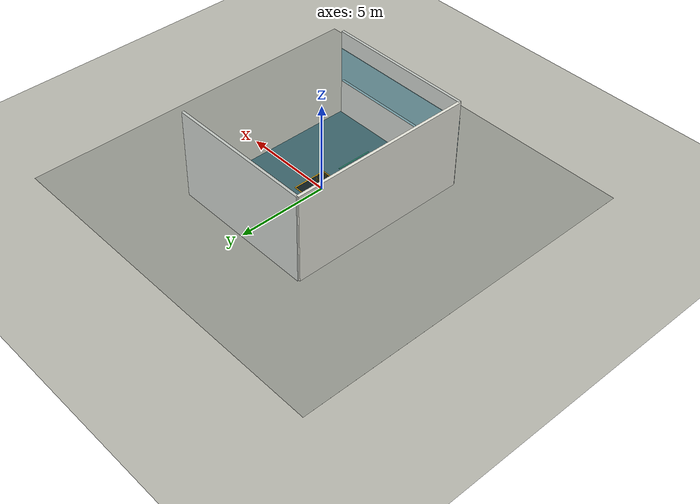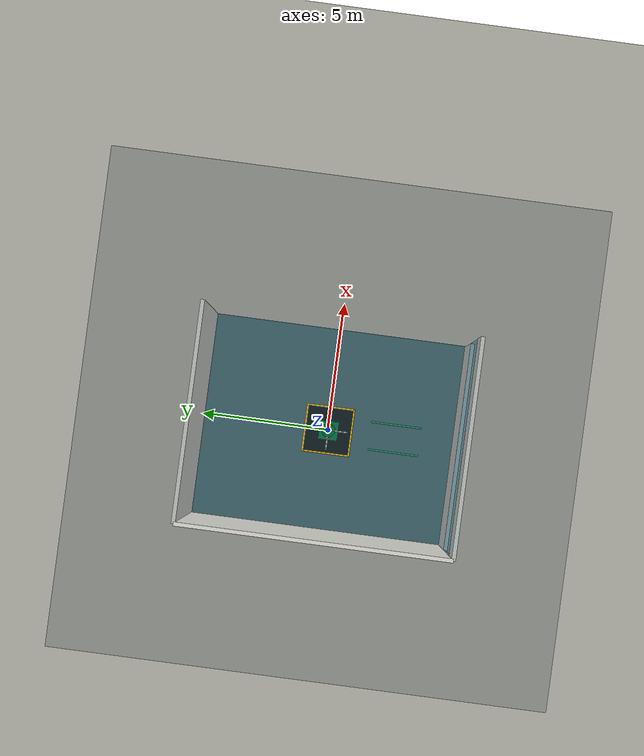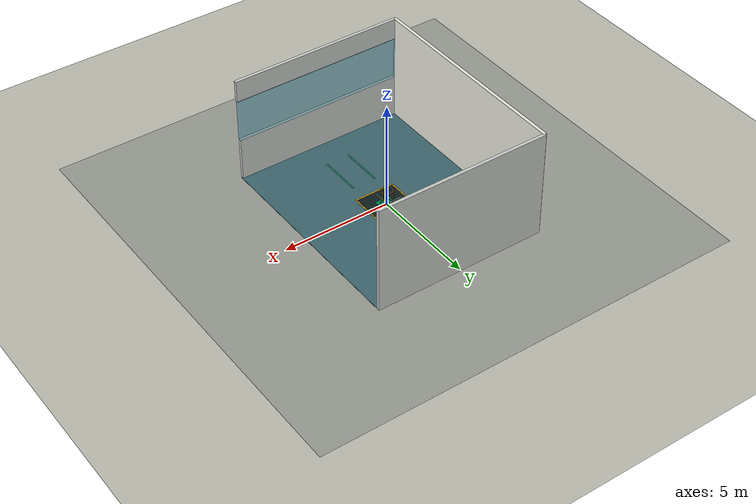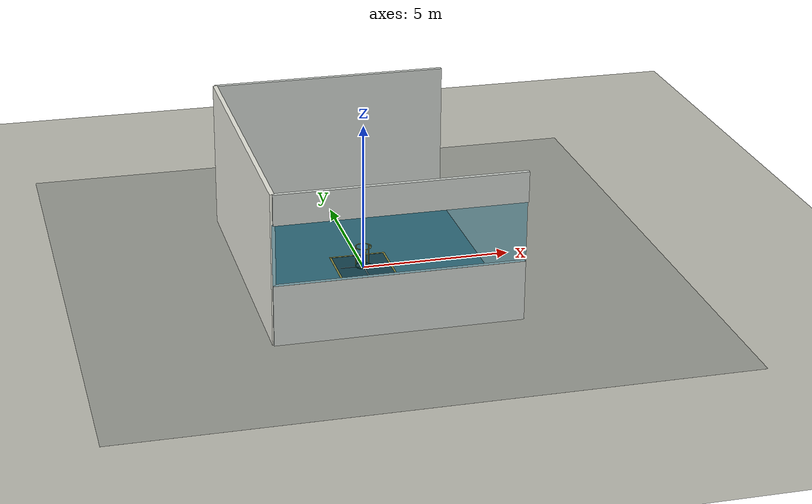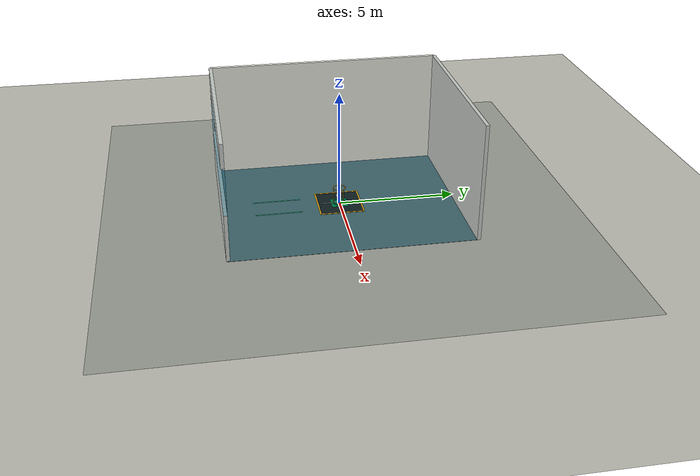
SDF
<sdf version="1.9">
 <world name="lab106_landingbox">
  <physics type="ode">
   <ode>
    <solver>
     <type>quick</type>
     <iters>10</iters>
     <sor>1.3</sor>
     <use_dynamic_moi_rescaling>0</use_dynamic_moi_rescaling>
    </solver>
    <constraints>
     <cfm>0</cfm>
     <erp>0.2</erp>
     <contact_max_correcting_vel>100</contact_max_correcting_vel>
     <contact_surface_layer>0.001</contact_surface_layer>
    </constraints>
   </ode>
   <max_step_size>0.004</max_step_size>
   <real_time_factor>1.0</real_time_factor>
   <real_time_update_rate>250</real_time_update_rate>
  </physics>
  <gravity>0 0 -9.8</gravity>
  <magnetic_field>6e-06 2.3e-05 -4.2e-05</magnetic_field>
  <atmosphere type="adiabatic"/>
  <scene>
   <grid>false</grid>
   <ambient>0.58 0.58 0.56 1</ambient>
   <background>0.78 0.80 0.82 1</background>
   <shadows>true</shadows>
  </scene>
  <model name="ground_plane">
   <static>true</static>
   <link name="link">
    <collision name="collision">
     <geometry><plane><normal>0 0 1</normal><size>500 500</size></plane></geometry>
     <surface><friction><ode><mu>100</mu><mu2>50</mu2></ode></friction></surface>
    </collision>
    <visual name="visual">
     <geometry><plane><normal>0 0 1</normal><size>500 500</size></plane></geometry>
     <material>
      <ambient>0.74 0.74 0.70 1</ambient>
      <diffuse>0.74 0.74 0.70 1</diffuse>
      <specular>0.05 0.05 0.05 1</specular>
     </material>
    </visual>
    <inertial>
     <mass>1</mass>
     <inertia><ixx>1</ixx><ixy>0</ixy><ixz>0</ixz><iyy>1</iyy><iyz>0</iyz><izz>1</izz></inertia>
    </inertial>
   </link>
  </model>
  <light name="sunUTC" type="directional">
   <pose>0 0 500 0 0 0</pose>
   <intensity>1.15</intensity>
   <direction>-0.25 0.45 -0.86</direction>
   <diffuse>0.98 0.94 0.86 1</diffuse>
   <specular>0.28 0.28 0.25 1</specular>
   <attenuation><range>2000</range><linear>0</linear><constant>1</constant><quadratic>0</quadratic></attenuation>
   <spot><inner_angle>0</inner_angle><outer_angle>0</outer_angle><falloff>0</falloff></spot>
  </light>
  <spherical_coordinates>
   <surface_model>EARTH_WGS84</surface_model>
   <world_frame_orientation>ENU</world_frame_orientation>
   <latitude_deg>47.397971057728974</latitude_deg>
   <longitude_deg>8.546163739800146</longitude_deg>
   <elevation>0</elevation>
  </spherical_coordinates>
  <model name="Floor_room">
   <link name="main">
    <pose>0 0 0.01 0 -0 0</pose>
    <collision name="main_Collision"><geometry><box><size>20 20 0.001</size></box></geometry></collision>
    <visual name="main_Visual">
     <geometry><box><size>20 20 0.001</size></box></geometry>
     <material>
      <ambient>0.56 0.58 0.56 1</ambient>
      <diffuse>0.60 0.61 0.58 1</diffuse>
      <specular>0.02 0.02 0.02 1</specular>
     </material>
    </visual>
   </link>
   <static>true</static>
   <pose>0.043797 -0.01325 0 0 -0 0</pose>
  </model>
  <model name="window">
   <link name="link_2">
    <pose>-3.65586 -0.020997 0.361529 0 -0 0</pose>
    <inertial>
     <mass>1</mass>
     <inertia><ixx>1</ixx><ixy>0</ixy><ixz>0</ixz><iyy>1</iyy><iyz>0</iyz><izz>1</izz></inertia>
    </inertial>
    <visual name="visual">
     <pose>0 0 0.9 0 -0 0</pose>
     <geometry><box><size>8 0.15 2</size></box></geometry>
     <material>
      <lighting>true</lighting>
      <ambient>0.20 0.50 0.60 0.7</ambient>
      <diffuse>0.22 0.62 0.75 0.7</diffuse>
      <specular>0.18 0.18 0.18 1</specular>
      <emissive>0.02 0.06 0.08 1</emissive>
     </material>
     <transparency>0.55</transparency>
    </visual>
    <collision name="collision">
     <pose>0 0 0.9 0 -0 0</pose>
     <geometry><box><size>8 0.15 2</size></box></geometry>
     <surface>
      <friction>
       <ode><mu>1</mu><mu2>1</mu2><fdir1>0 0 0</fdir1><slip1>0</slip1><slip2>0</slip2></ode>
       <torsional>
        <coefficient>1</coefficient>
        <patch_radius>0</patch_radius>
        <surface_radius>0</surface_radius>
        <use_patch_radius>1</use_patch_radius>
        <ode><slip>0</slip></ode>
       </torsional>
      </friction>
      <bounce><restitution_coefficient>0</restitution_coefficient><threshold>1e+06</threshold></bounce>
      <contact>
       <collide_without_contact>0</collide_without_contact>
       <collide_without_contact_bitmask>1</collide_without_contact_bitmask>
       <collide_bitmask>1</collide_bitmask>
       <ode>
        <soft_cfm>0</soft_cfm>
        <soft_erp>0.2</soft_erp>
        <kp>1e+13</kp>
        <kd>1</kd>
        <max_vel>0.01</max_vel>
        <min_depth>0</min_depth>
       </ode>
       <bullet>
        <split_impulse>1</split_impulse>
        <split_impulse_penetration_threshold>-0.01</split_impulse_penetration_threshold>
        <soft_cfm>0</soft_cfm>
        <soft_erp>0.2</soft_erp>
        <kp>1e+13</kp>
        <kd>1</kd>
       </bullet>
      </contact>
     </surface>
    </collision>
   </link>
   <static>true</static>
   <pose>3.62277 -4.97689 1.7565 0 -0 0</pose>
  </model>
  <model name="Workshop">
   <link name="Wall_10">
    <pose>-2.5053 2.09449 2 0 0 -1.5708</pose>
    <inertial>
     <mass>1</mass>
     <inertia><ixx>1</ixx><ixy>0</ixy><ixz>0</ixz><iyy>1</iyy><iyz>0</iyz><izz>1</izz></inertia>
    </inertial>
    <visual name="Wall_10_Visual">
     <pose>0 0 0.5 0 -0 0</pose>
     <geometry><box><size>10 0.15 5</size></box></geometry>
     <material>
      <ambient>0.88 0.88 0.84 1</ambient>
      <diffuse>0.92 0.92 0.88 1</diffuse>
      <specular>0.02 0.02 0.02 1</specular>
      <emissive>0 0 0 1</emissive>
     </material>
    </visual>
    <collision name="Wall_10_Collision">
     <pose>0 0 0.5 0 -0 0</pose>
     <geometry><box><size>10 0.15 5</size></box></geometry>
     <surface>
      <friction>
       <ode><mu>1</mu><mu2>1</mu2><fdir1>0 0 0</fdir1><slip1>0</slip1><slip2>0</slip2></ode>
       <torsional>
        <coefficient>1</coefficient>
        <patch_radius>0</patch_radius>
        <surface_radius>0</surface_radius>
        <use_patch_radius>1</use_patch_radius>
        <ode><slip>0</slip></ode>
       </torsional>
      </friction>
      <bounce><restitution_coefficient>0</restitution_coefficient><threshold>1e+06</threshold></bounce>
      <contact>
       <collide_without_contact>0</collide_without_contact>
       <collide_without_contact_bitmask>1</collide_without_contact_bitmask>
       <collide_bitmask>1</collide_bitmask>
       <ode>
        <soft_cfm>0</soft_cfm>
        <soft_erp>0.2</soft_erp>
        <kp>1e+13</kp>
        <kd>1</kd>
        <max_vel>0.01</max_vel>
        <min_depth>0</min_depth>
       </ode>
       <bullet>
        <split_impulse>1</split_impulse>
        <split_impulse_penetration_threshold>-0.01</split_impulse_penetration_threshold>
        <soft_cfm>0</soft_cfm>
        <soft_erp>0.2</soft_erp>
        <kp>1e+13</kp>
        <kd>1</kd>
       </bullet>
      </contact>
     </surface>
    </collision>
   </link>
   <link name="Wall_11">
    <pose>1.46131 -2.90507 0.516113 0 -0 3.14159</pose>
    <inertial>
     <inertia><ixx>1</ixx><ixy>0</ixy><ixz>0</ixz><iyy>1</iyy><iyz>0</iyz><izz>1</izz></inertia>
     <mass>1</mass>
    </inertial>
    <visual name="Wall_11_Visual">
     <pose>0 0 0.5 0 -0 0</pose>
     <geometry><box><size>8 0.15 2</size></box></geometry>
     <material>
      <ambient>0.72 0.74 0.72 1</ambient>
      <emissive>0 0 0 1</emissive>
      <diffuse>0.78 0.80 0.78 1</diffuse>
      <specular>0.02 0.02 0.02 1</specular>
     </material>
    </visual>
    <collision name="Wall_11_Collision">
     <pose>0 0 0.5 0 -0 0</pose>
     <geometry><box><size>8 0.15 2</size></box></geometry>
     <surface>
      <friction>
       <ode><mu>1</mu><mu2>1</mu2><fdir1>0 0 0</fdir1><slip1>0</slip1><slip2>0</slip2></ode>
       <torsional>
        <coefficient>1</coefficient>
        <patch_radius>0</patch_radius>
        <surface_radius>0</surface_radius>
        <use_patch_radius>1</use_patch_radius>
        <ode><slip>0</slip></ode>
       </torsional>
      </friction>
      <bounce><restitution_coefficient>0</restitution_coefficient><threshold>1e+06</threshold></bounce>
      <contact>
       <collide_without_contact>0</collide_without_contact>
       <collide_without_contact_bitmask>1</collide_without_contact_bitmask>
       <collide_bitmask>1</collide_bitmask>
       <ode>
        <soft_cfm>0</soft_cfm>
        <soft_erp>0.2</soft_erp>
        <kp>1e+13</kp>
        <kd>1</kd>
        <max_vel>0.01</max_vel>
        <min_depth>0</min_depth>
       </ode>
       <bullet>
        <split_impulse>1</split_impulse>
        <split_impulse_penetration_threshold>-0.01</split_impulse_penetration_threshold>
        <soft_cfm>0</soft_cfm>
        <soft_erp>0.2</soft_erp>
        <kp>1e+13</kp>
        <kd>1</kd>
       </bullet>
      </contact>
     </surface>
    </collision>
   </link>
   <link name="Wall_11_clone">
    <pose>1.4947 -2.90551 4 0 -0 3.14159</pose>
    <inertial>
     <inertia><ixx>1</ixx><ixy>0</ixy><ixz>0</ixz><iyy>1</iyy><iyz>0</iyz><izz>1</izz></inertia>
     <mass>1</mass>
    </inertial>
    <visual name="Wall_11_Visual">
     <pose>0 0 0.5 0 -0 0</pose>
     <geometry><box><size>8 0.15 1</size></box></geometry>
     <material>
      <ambient>0.72 0.74 0.72 1</ambient>
      <emissive>0 0 0 1</emissive>
      <diffuse>0.78 0.80 0.78 1</diffuse>
      <specular>0.02 0.02 0.02 1</specular>
     </material>
    </visual>
    <collision name="Wall_11_Collision">
     <pose>0 0 0.5 0 -0 0</pose>
     <geometry><box><size>7.71217 0.15 1</size></box></geometry>
     <surface>
      <friction>
       <ode><mu>1</mu><mu2>1</mu2><fdir1>0 0 0</fdir1><slip1>0</slip1><slip2>0</slip2></ode>
       <torsional>
        <coefficient>1</coefficient>
        <patch_radius>0</patch_radius>
        <surface_radius>0</surface_radius>
        <use_patch_radius>1</use_patch_radius>
        <ode><slip>0</slip></ode>
       </torsional>
      </friction>
      <bounce><restitution_coefficient>0</restitution_coefficient><threshold>1e+06</threshold></bounce>
      <contact>
       <collide_without_contact>0</collide_without_contact>
       <collide_without_contact_bitmask>1</collide_without_contact_bitmask>
       <collide_bitmask>1</collide_bitmask>
       <ode>
        <soft_cfm>0</soft_cfm>
        <soft_erp>0.2</soft_erp>
        <kp>1e+13</kp>
        <kd>1</kd>
        <max_vel>0.01</max_vel>
        <min_depth>0</min_depth>
       </ode>
       <bullet>
        <split_impulse>1</split_impulse>
        <split_impulse_penetration_threshold>-0.01</split_impulse_penetration_threshold>
        <soft_cfm>0</soft_cfm>
        <soft_erp>0.2</soft_erp>
        <kp>1e+13</kp>
        <kd>1</kd>
       </bullet>
      </contact>
     </surface>
    </collision>
   </link>
   <link name="Wall_13">
    <pose>1.4947 7.09449 2 0 -0 3.14159</pose>
    <inertial>
     <mass>1</mass>
     <inertia><ixx>1</ixx><ixy>0</ixy><ixz>0</ixz><iyy>1</iyy><iyz>0</iyz><izz>1</izz></inertia>
    </inertial>
    <visual name="Wall_13_Visual">
     <pose>0 0 0.5 0 -0 0</pose>
     <geometry><box><size>8 0.15 5</size></box></geometry>
     <material>
      <ambient>0.72 0.74 0.72 1</ambient>
      <diffuse>0.78 0.80 0.78 1</diffuse>
      <specular>0.02 0.02 0.02 1</specular>
      <emissive>0 0 0 1</emissive>
     </material>
    </visual>
    <collision name="Wall_13_Collision">
     <pose>0 0 0.5 0 -0 0</pose>
     <geometry><box><size>8 0.15 5</size></box></geometry>
     <surface>
      <friction>
       <ode><mu>1</mu><mu2>1</mu2><fdir1>0 0 0</fdir1><slip1>0</slip1><slip2>0</slip2></ode>
       <torsional>
        <coefficient>1</coefficient>
        <patch_radius>0</patch_radius>
        <surface_radius>0</surface_radius>
        <use_patch_radius>1</use_patch_radius>
        <ode><slip>0</slip></ode>
       </torsional>
      </friction>
      <bounce><restitution_coefficient>0</restitution_coefficient><threshold>1e+06</threshold></bounce>
      <contact>
       <collide_without_contact>0</collide_without_contact>
       <collide_without_contact_bitmask>1</collide_without_contact_bitmask>
       <collide_bitmask>1</collide_bitmask>
       <ode>
        <soft_cfm>0</soft_cfm>
        <soft_erp>0.2</soft_erp>
        <kp>1e+13</kp>
        <kd>1</kd>
        <max_vel>0.01</max_vel>
        <min_depth>0</min_depth>
       </ode>
       <bullet>
        <split_impulse>1</split_impulse>
        <split_impulse_penetration_threshold>-0.01</split_impulse_penetration_threshold>
        <soft_cfm>0</soft_cfm>
        <soft_erp>0.2</soft_erp>
        <kp>1e+13</kp>
        <kd>1</kd>
       </bullet>
      </contact>
     </surface>
    </collision>
   </link>
   <link name="link_0">
    <inertial>
     <mass>1</mass>
     <inertia>
      <ixx>0.166667</ixx>
      <ixy>0</ixy>
      <ixz>0</ixz>
      <iyy>0.166667</iyy>
      <iyz>0</iyz>
      <izz>0.166667</izz>
     </inertia>
    </inertial>
    <pose>1.49282 2.06191 0.012848 0 0 -1.5708</pose>
    <visual name="visual">
     <geometry><box><size>10 8 0.013</size></box></geometry>
     <material>
      <lighting>1</lighting>
      <ambient>0.20 0.33 0.36 1</ambient>
      <diffuse>0.24 0.40 0.43 1</diffuse>
      <specular>0.02 0.02 0.02 1</specular>
      <emissive>0 0 0 1</emissive>
     </material>
    </visual>
    <collision name="collision"><geometry><box><size>10 8 0.013</size></box></geometry></collision>
   </link>
   <static>true</static>
   <pose>-1.4947 -2.09449 0 0 -0 0</pose>
  </model>
  <model name="Landing box">
   <static>true</static>
   <link name="base_link">
    <inertial>
     <pose>0 0.003044 0.366956 0 -0 0</pose>
     <mass>2.1469</mass>
     <inertia>
      <ixx>0.251683</ixx>
      <ixy>0.00621323</ixy>
      <ixz>-0.015183</ixz>
      <iyy>0.268915</iyy>
      <iyz>-0.00799762</iyz>
      <izz>0.110272</izz>
     </inertia>
    </inertial>
    <collision name="base_link_collision">
     <pose>0 0 0.03 0 -0 0</pose>
     <geometry><cylinder><length>0.02</length><radius>0.26</radius></cylinder></geometry>
    </collision>
    <visual name="base_link_visual">
     <pose>0 0 0.03 0 -0 0</pose>
     <geometry><mesh><scale>1 1 1</scale><uri>model://landing_box/meshes/base_link.dae</uri></mesh></geometry>
     <material>
      <ambient>0.02 0.24 0.16 1</ambient>
      <diffuse>0.03 0.48 0.30 1</diffuse>
      <specular>0.05 0.05 0.05 1</specular>
     </material>
    </visual>
   </link>
   <link name="Link_1">
    <collision name="base_link_fixed_joint_lump__Link_1_collision_1">
     <pose>-0.235167 0.112679 0.37 1.5708 -0 2.61799</pose>
     <geometry><box><size>0.02 0.7 0.02</size></box></geometry>
    </collision>
    <visual name="base_link_fixed_joint_lump__Link_1_visual_1">
     <pose>-0.235167 0.112679 0.02 1.5708 -0 2.61799</pose>
     <geometry><mesh><scale>1 1 1</scale><uri>model://landing_box/meshes/Link_1.dae</uri></mesh></geometry>
     <material>
      <ambient>0.95 0.68 0.10 1</ambient>
      <diffuse>1.00 0.78 0.12 1</diffuse>
      <specular>0.05 0.04 0.02 1</specular>
     </material>
    </visual>
   </link>
   <link name="Link_2">
    <collision name="base_link_fixed_joint_lump__Link_2_collision_2">
     <pose>0.02 -0.26 0.37 -1.5708 -0 -1.5708</pose>
     <geometry><box><size>0.02 0.7 0.02</size></box></geometry>
    </collision>
    <visual name="base_link_fixed_joint_lump__Link_2_visual_2">
     <pose>0.02 -0.26 0.02 -1.5708 -0 -1.5708</pose>
     <geometry><mesh><scale>1 1 1</scale><uri>model://landing_box/meshes/Link_2.dae</uri></mesh></geometry>
     <material>
      <ambient>0.95 0.68 0.10 1</ambient>
      <diffuse>1.00 0.78 0.12 1</diffuse>
      <specular>0.05 0.04 0.02 1</specular>
     </material>
    </visual>
   </link>
   <link name="Link_3">
    <collision name="base_link_fixed_joint_lump__Link_3_collision_3">
     <pose>0.215167 0.147321 0.37 1.5708 -0 0.523599</pose>
     <geometry><box><size>0.02 0.7 0.02</size></box></geometry>
    </collision>
    <visual name="base_link_fixed_joint_lump__Link_3_visual_3">
     <pose>0.215167 0.147321 0.02 1.5708 -0 0.523599</pose>
     <geometry><mesh><scale>1 1 1</scale><uri>model://landing_box/meshes/Link_3.dae</uri></mesh></geometry>
     <material>
      <ambient>0.95 0.68 0.10 1</ambient>
      <diffuse>1.00 0.78 0.12 1</diffuse>
      <specular>0.05 0.04 0.02 1</specular>
     </material>
    </visual>
   </link>
   <link name="Link_4">
    <collision name="base_link_fixed_joint_lump__Link_1_collision_4">
     <pose>-0.235167 0.112679 0.73 1.5708 -0 2.61799</pose>
     <geometry><box><size>0.02 0.02 0.3</size></box></geometry>
    </collision>
   </link>
   <link name="Link_5">
    <collision name="base_link_fixed_joint_lump__Link_2_collision_5">
     <pose>0.02 -0.26 0.73 -1.5708 -0 -1.5708</pose>
     <geometry><box><size>0.02 0.02 0.3</size></box></geometry>
    </collision>
   </link>
   <link name="Link_6">
    <collision name="base_link_fixed_joint_lump__Link_3_collision_6">
     <pose>0.215167 0.147321 0.73 1.5708 -0 0.523599</pose>
     <geometry><box><size>0.02 0.02 0.3</size></box></geometry>
    </collision>
   </link>
   <link name="Link_7">
    <collision name="base_link_fixed_joint_lump__Link_1_collision_7">
     <pose>0.235167 -0.112679 0.73 1.5708 -0 2.61799</pose>
     <geometry><box><size>0.02 0.02 0.3</size></box></geometry>
    </collision>
   </link>
   <link name="Link_8">
    <collision name="base_link_fixed_joint_lump__Link_2_collision_8">
     <pose>-0.02 0.26 0.73 -1.5708 -0 -1.5708</pose>
     <geometry><box><size>0.02 0.02 0.3</size></box></geometry>
    </collision>
   </link>
   <link name="Link_9">
    <collision name="base_link_fixed_joint_lump__Link_3_collision_9">
     <pose>-0.215167 -0.147321 0.73 1.5708 -0 0.523599</pose>
     <geometry><box><size>0.02 0.02 0.3</size></box></geometry>
    </collision>
   </link>
   <pose>0 0 0.012 0 0 0</pose>
  </model>
  <light name="soft_ceiling_fill" type="point">
   <pose>0 0 4.5 0 0 0</pose>
   <cast_shadows>false</cast_shadows>
   <intensity>0.65</intensity>
   <diffuse>0.92 0.96 1 1</diffuse>
   <specular>0.15 0.15 0.15 1</specular>
   <attenuation>
    <range>12</range>
    <constant>0.7</constant>
    <linear>0.08</linear>
    <quadratic>0.01</quadratic>
   </attenuation>
  </light>
  <light name="landing_zone_fill" type="point">
   <pose>0 0 2.2 0 0 0</pose>
   <cast_shadows>false</cast_shadows>
   <intensity>0.45</intensity>
   <diffuse>0.75 0.95 0.85 1</diffuse>
   <specular>0.10 0.10 0.10 1</specular>
   <attenuation>
    <range>5</range>
    <constant>0.8</constant>
    <linear>0.15</linear>
    <quadratic>0.03</quadratic>
   </attenuation>
  </light>
  <model name="landing_zone_mat">
   <static>true</static>
   <pose>0 0 0.018 0 0 0</pose>
   <link name="link">
    <visual name="visual">
     <geometry><box><size>1.80 1.80 0.006</size></box></geometry>
     <material>
      <ambient>0.05 0.09 0.10 1</ambient>
      <diffuse>0.06 0.12 0.13 1</diffuse>
      <specular>0.02 0.02 0.02 1</specular>
     </material>
     <transparency>0.10</transparency>
     <cast_shadows>false</cast_shadows>
    </visual>
   </link>
  </model>
  <model name="landing_zone_center">
   <static>true</static>
   <pose>0 0 0.024 0 0 0</pose>
   <link name="link">
    <visual name="visual">
     <geometry><box><size>0.72 0.72 0.004</size></box></geometry>
     <material>
      <ambient>0.00 0.35 0.22 1</ambient>
      <diffuse>0.00 0.60 0.36 1</diffuse>
      <specular>0.02 0.02 0.02 1</specular>
     </material>
     <transparency>0.18</transparency>
     <cast_shadows>false</cast_shadows>
    </visual>
   </link>
  </model>
  <model name="landing_zone_border_n">
   <static>true</static>
   <pose>0 0.92 0.03 0 0 0</pose>
   <link name="link">
    <visual name="visual">
     <geometry><box><size>1.90 0.06 0.008</size></box></geometry>
     <material>
      <ambient>1.00 0.74 0.10 1</ambient>
      <diffuse>1.00 0.74 0.10 1</diffuse>
      <specular>0.02 0.02 0.02 1</specular>
     </material>
     <cast_shadows>false</cast_shadows>
    </visual>
   </link>
  </model>
  <model name="landing_zone_border_s">
   <static>true</static>
   <pose>0 -0.92 0.03 0 0 0</pose>
   <link name="link">
    <visual name="visual">
     <geometry><box><size>1.90 0.06 0.008</size></box></geometry>
     <material>
      <ambient>1.00 0.74 0.10 1</ambient>
      <diffuse>1.00 0.74 0.10 1</diffuse>
      <specular>0.02 0.02 0.02 1</specular>
     </material>
     <cast_shadows>false</cast_shadows>
    </visual>
   </link>
  </model>
  <model name="landing_zone_border_e">
   <static>true</static>
   <pose>0.92 0 0.03 0 0 0</pose>
   <link name="link">
    <visual name="visual">
     <geometry><box><size>0.06 1.90 0.008</size></box></geometry>
     <material>
      <ambient>1.00 0.74 0.10 1</ambient>
      <diffuse>1.00 0.74 0.10 1</diffuse>
      <specular>0.02 0.02 0.02 1</specular>
     </material>
     <cast_shadows>false</cast_shadows>
    </visual>
   </link>
  </model>
  <model name="landing_zone_border_w">
   <static>true</static>
   <pose>-0.92 0 0.03 0 0 0</pose>
   <link name="link">
    <visual name="visual">
     <geometry><box><size>0.06 1.90 0.008</size></box></geometry>
     <material>
      <ambient>1.00 0.74 0.10 1</ambient>
      <diffuse>1.00 0.74 0.10 1</diffuse>
      <specular>0.02 0.02 0.02 1</specular>
     </material>
     <cast_shadows>false</cast_shadows>
    </visual>
   </link>
  </model>
  <model name="clearance_mark_x">
   <static>true</static>
   <pose>0 0 0.034 0 0 0</pose>
   <link name="link">
    <visual name="visual">
     <geometry><box><size>1.55 0.035 0.006</size></box></geometry>
     <material>
      <ambient>0.95 0.95 0.90 1</ambient>
      <diffuse>0.95 0.95 0.90 1</diffuse>
      <specular>0.02 0.02 0.02 1</specular>
     </material>
     <transparency>0.05</transparency>
     <cast_shadows>false</cast_shadows>
    </visual>
   </link>
  </model>
  <model name="clearance_mark_y">
   <static>true</static>
   <pose>0 0 0.035 0 0 0</pose>
   <link name="link">
    <visual name="visual">
     <geometry><box><size>0.035 1.55 0.006</size></box></geometry>
     <material>
      <ambient>0.95 0.95 0.90 1</ambient>
      <diffuse>0.95 0.95 0.90 1</diffuse>
      <specular>0.02 0.02 0.02 1</specular>
     </material>
     <transparency>0.05</transparency>
     <cast_shadows>false</cast_shadows>
    </visual>
   </link>
  </model>
  <model name="clearance_lane_left">
   <static>true</static>
   <pose>-0.55 -2.65 0.026 0 0 0</pose>
   <link name="link">
    <visual name="visual">
     <geometry><box><size>0.06 2.0 0.005</size></box></geometry>
     <material>
      <ambient>0.18 0.75 0.55 1</ambient>
      <diffuse>0.18 0.75 0.55 1</diffuse>
      <specular>0.02 0.02 0.02 1</specular>
     </material>
     <transparency>0.25</transparency>
     <cast_shadows>false</cast_shadows>
    </visual>
   </link>
  </model>
  <model name="clearance_lane_right">
   <static>true</static>
   <pose>0.55 -2.65 0.026 0 0 0</pose>
   <link name="link">
    <visual name="visual">
     <geometry><box><size>0.06 2.0 0.005</size></box></geometry>
     <material>
      <ambient>0.18 0.75 0.55 1</ambient>
      <diffuse>0.18 0.75 0.55 1</diffuse>
      <specular>0.02 0.02 0.02 1</specular>
     </material>
     <transparency>0.25</transparency>
     <cast_shadows>false</cast_shadows>
    </visual>
   </link>
  </model>
 </world>
</sdf>
